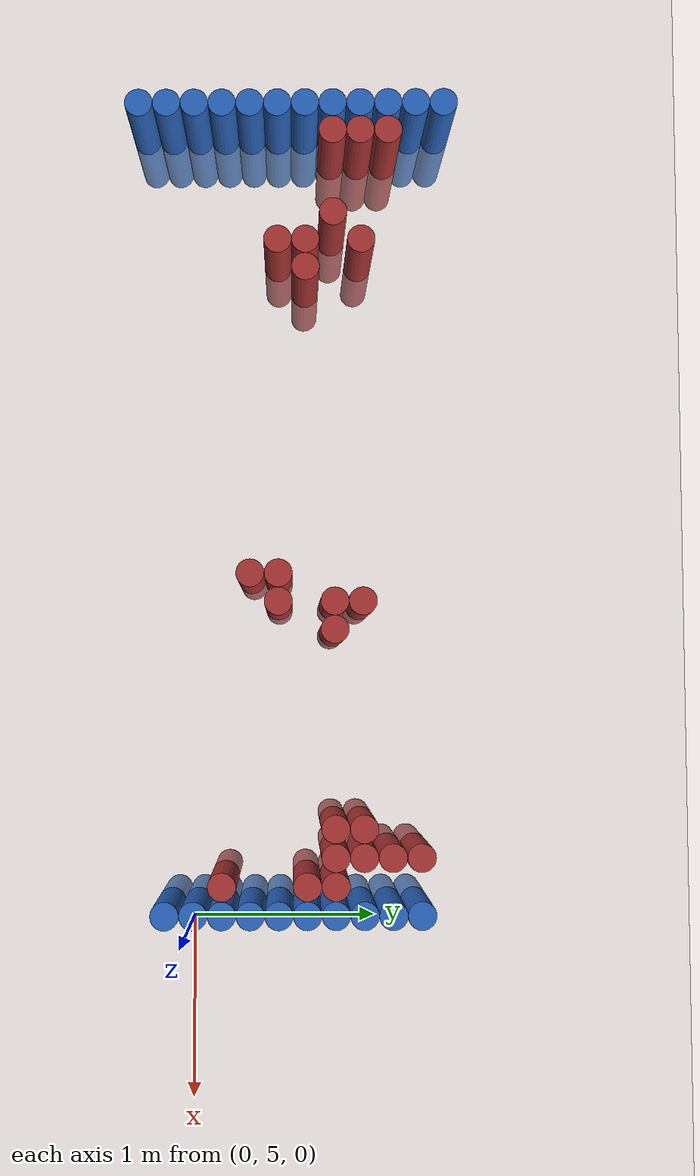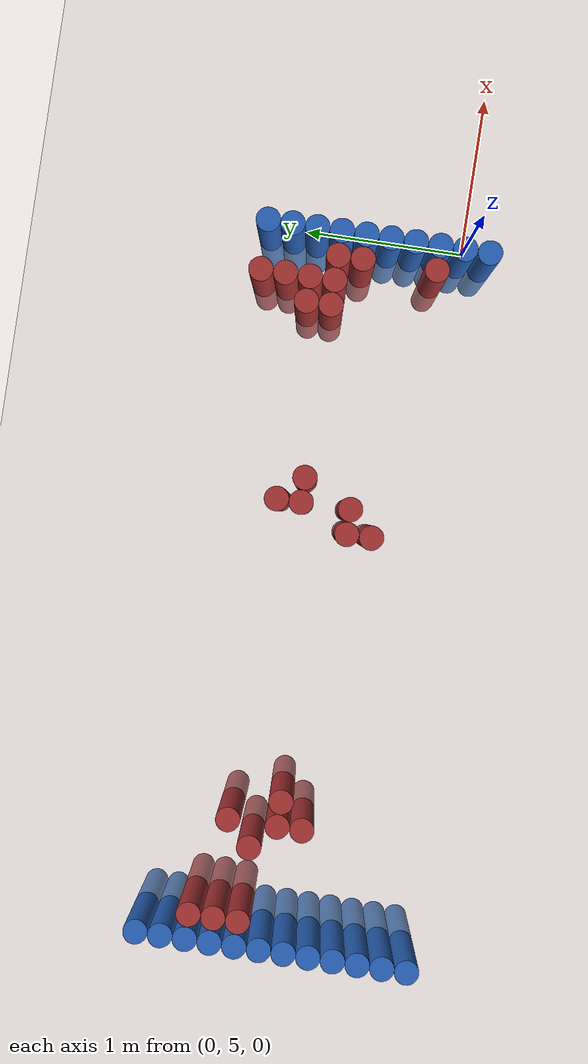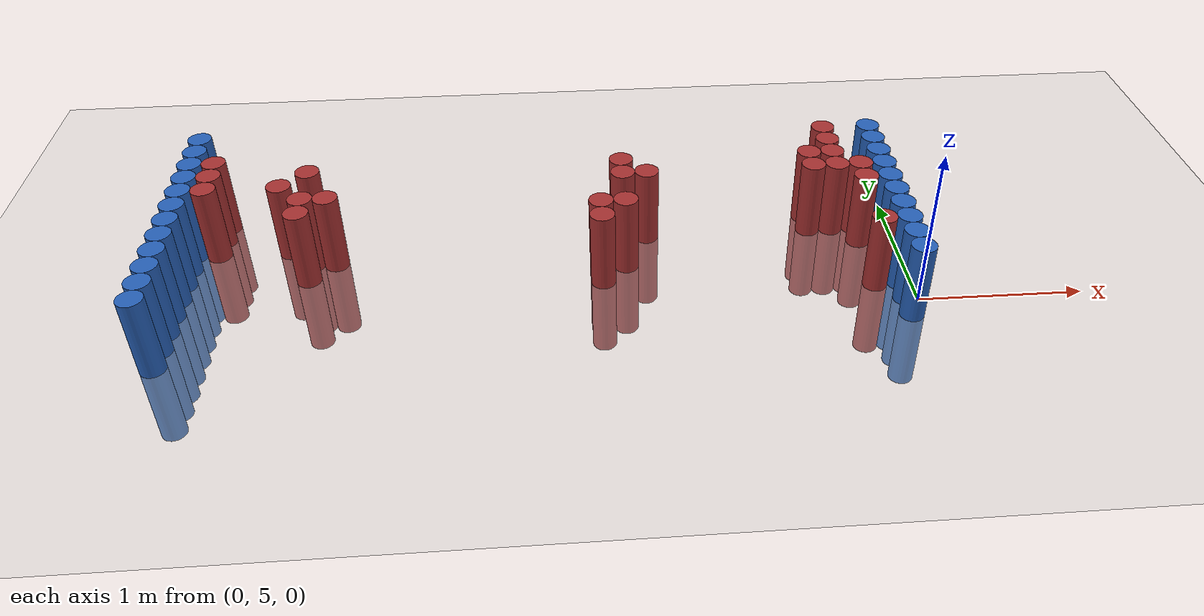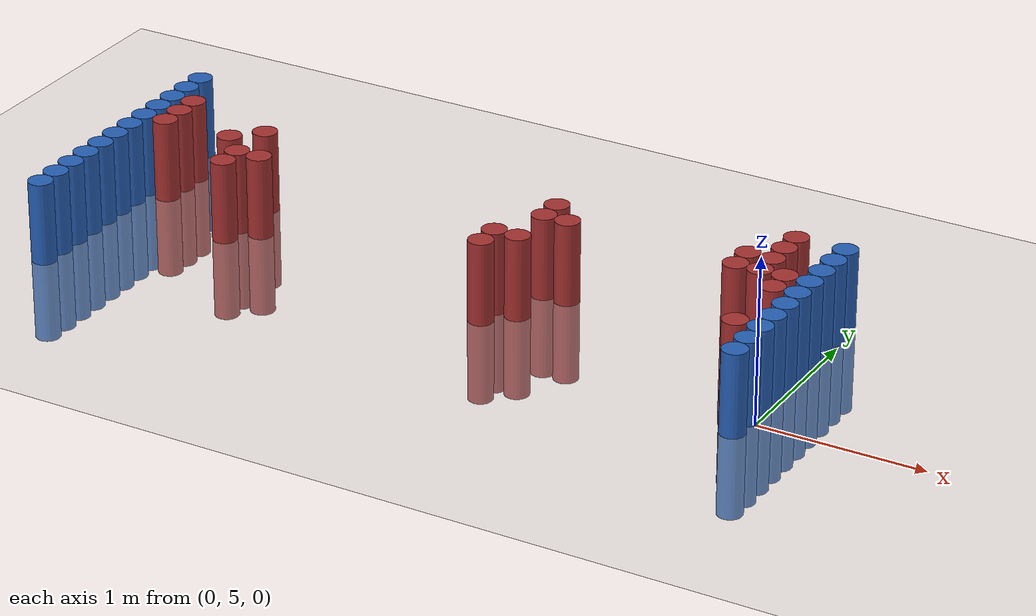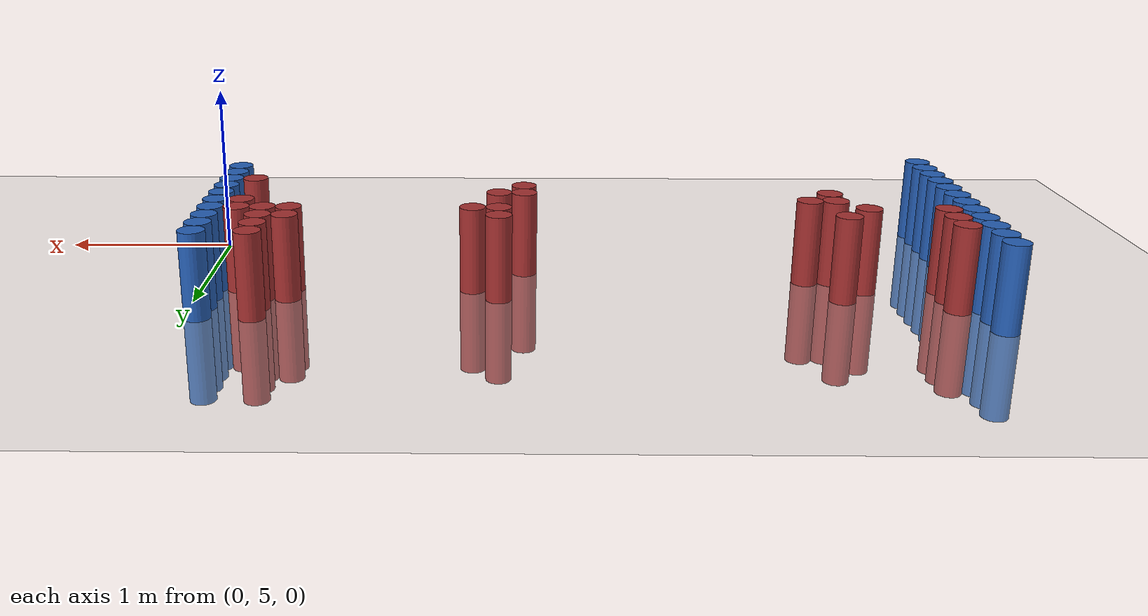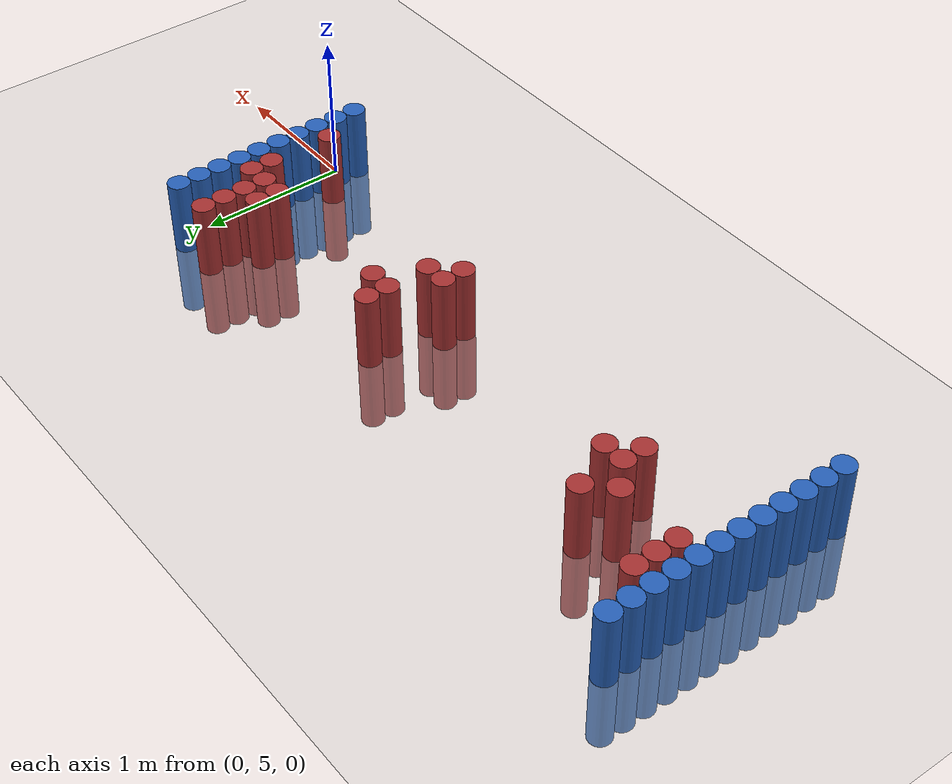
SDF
<sdf version="1.6">
 <world name="default">
  <model name="ground_plane">
   <static>1</static>
   <link name="link">
    <collision name="collision">
     <geometry><plane><normal>0 0 1</normal><size>100 100</size></plane></geometry>
     <surface><friction><ode><mu>100</mu><mu2>50</mu2></ode></friction></surface>
    </collision>
    <visual name="visual">
     <cast_shadows>0</cast_shadows>
     <geometry><plane><normal>0 0 1</normal><size>100 100</size></plane></geometry>
     <material>
      <script><uri>file://media/materials/scripts/gazebo.material</uri><name>Gazebo/Grey</name></script>
     </material>
    </visual>
   </link>
  </model>
  <model name="unit_cylinder_91">
   <static>1</static>
   <pose>-4.425000 4.725000 0.000000 0.000000 0.000000 0.000000</pose>
   <link name="link">
    <inertial>
     <mass>1</mass>
     <inertia><ixx>0.145833</ixx><ixy>0</ixy><ixz>0</ixz><iyy>0.145833</iyy><iyz>0</iyz><izz>0.125</izz></inertia>
    </inertial>
    <collision name="collision">
     <geometry><cylinder><radius>0.075000</radius><length>1</length></cylinder></geometry>
    </collision>
    <visual name="visual">
     <geometry><cylinder><radius>0.075000</radius><length>1</length></cylinder></geometry>
     <material>
      <ambient>0.152000 0.379000 0.720000 1</ambient>
      <diffuse>0.152000 0.379000 0.720000 1</diffuse>
     </material>
     <material>
      <script><name>Gazebo/Grey</name><uri>file://media/materials/scripts/gazebo.material</uri></script>
     </material>
    </visual>
   </link>
  </model>
  <model name="unit_cylinder_92">
   <static>1</static>
   <pose>-0.075000 4.875000 0.000000 0.000000 0.000000 0.000000</pose>
   <link name="link">
    <inertial>
     <mass>1</mass>
     <inertia><ixx>0.145833</ixx><ixy>0</ixy><ixz>0</ixz><iyy>0.145833</iyy><iyz>0</iyz><izz>0.125</izz></inertia>
    </inertial>
    <collision name="collision">
     <geometry><cylinder><radius>0.075000</radius><length>1</length></cylinder></geometry>
    </collision>
    <visual name="visual">
     <geometry><cylinder><radius>0.075000</radius><length>1</length></cylinder></geometry>
     <material>
      <ambient>0.152000 0.379000 0.720000 1</ambient>
      <diffuse>0.152000 0.379000 0.720000 1</diffuse>
     </material>
     <material>
      <script><name>Gazebo/Grey</name><uri>file://media/materials/scripts/gazebo.material</uri></script>
     </material>
    </visual>
   </link>
  </model>
  <model name="unit_cylinder_93">
   <static>1</static>
   <pose>-4.425000 4.875000 0.000000 0.000000 0.000000 0.000000</pose>
   <link name="link">
    <inertial>
     <mass>1</mass>
     <inertia><ixx>0.145833</ixx><ixy>0</ixy><ixz>0</ixz><iyy>0.145833</iyy><iyz>0</iyz><izz>0.125</izz></inertia>
    </inertial>
    <collision name="collision">
     <geometry><cylinder><radius>0.075000</radius><length>1</length></cylinder></geometry>
    </collision>
    <visual name="visual">
     <geometry><cylinder><radius>0.075000</radius><length>1</length></cylinder></geometry>
     <material>
      <ambient>0.152000 0.379000 0.720000 1</ambient>
      <diffuse>0.152000 0.379000 0.720000 1</diffuse>
     </material>
     <material>
      <script><name>Gazebo/Grey</name><uri>file://media/materials/scripts/gazebo.material</uri></script>
     </material>
    </visual>
   </link>
  </model>
  <model name="unit_cylinder_94">
   <static>1</static>
   <pose>-0.075000 5.025000 0.000000 0.000000 0.000000 0.000000</pose>
   <link name="link">
    <inertial>
     <mass>1</mass>
     <inertia><ixx>0.145833</ixx><ixy>0</ixy><ixz>0</ixz><iyy>0.145833</iyy><iyz>0</iyz><izz>0.125</izz></inertia>
    </inertial>
    <collision name="collision">
     <geometry><cylinder><radius>0.075000</radius><length>1</length></cylinder></geometry>
    </collision>
    <visual name="visual">
     <geometry><cylinder><radius>0.075000</radius><length>1</length></cylinder></geometry>
     <material>
      <ambient>0.152000 0.379000 0.720000 1</ambient>
      <diffuse>0.152000 0.379000 0.720000 1</diffuse>
     </material>
     <material>
      <script><name>Gazebo/Grey</name><uri>file://media/materials/scripts/gazebo.material</uri></script>
     </material>
    </visual>
   </link>
  </model>
  <model name="unit_cylinder_95">
   <static>1</static>
   <pose>-4.425000 5.025000 0.000000 0.000000 0.000000 0.000000</pose>
   <link name="link">
    <inertial>
     <mass>1</mass>
     <inertia><ixx>0.145833</ixx><ixy>0</ixy><ixz>0</ixz><iyy>0.145833</iyy><iyz>0</iyz><izz>0.125</izz></inertia>
    </inertial>
    <collision name="collision">
     <geometry><cylinder><radius>0.075000</radius><length>1</length></cylinder></geometry>
    </collision>
    <visual name="visual">
     <geometry><cylinder><radius>0.075000</radius><length>1</length></cylinder></geometry>
     <material>
      <ambient>0.152000 0.379000 0.720000 1</ambient>
      <diffuse>0.152000 0.379000 0.720000 1</diffuse>
     </material>
     <material>
      <script><name>Gazebo/Grey</name><uri>file://media/materials/scripts/gazebo.material</uri></script>
     </material>
    </visual>
   </link>
  </model>
  <model name="unit_cylinder_96">
   <static>1</static>
   <pose>-4.425000 5.175000 0.000000 0.000000 0.000000 0.000000</pose>
   <link name="link">
    <inertial>
     <mass>1</mass>
     <inertia><ixx>0.145833</ixx><ixy>0</ixy><ixz>0</ixz><iyy>0.145833</iyy><iyz>0</iyz><izz>0.125</izz></inertia>
    </inertial>
    <collision name="collision">
     <geometry><cylinder><radius>0.075000</radius><length>1</length></cylinder></geometry>
    </collision>
    <visual name="visual">
     <geometry><cylinder><radius>0.075000</radius><length>1</length></cylinder></geometry>
     <material>
      <ambient>0.152000 0.379000 0.720000 1</ambient>
      <diffuse>0.152000 0.379000 0.720000 1</diffuse>
     </material>
     <material>
      <script><name>Gazebo/Grey</name><uri>file://media/materials/scripts/gazebo.material</uri></script>
     </material>
    </visual>
   </link>
  </model>
  <model name="unit_cylinder_97">
   <static>1</static>
   <pose>-4.425000 5.325000 0.000000 0.000000 0.000000 0.000000</pose>
   <link name="link">
    <inertial>
     <mass>1</mass>
     <inertia><ixx>0.145833</ixx><ixy>0</ixy><ixz>0</ixz><iyy>0.145833</iyy><iyz>0</iyz><izz>0.125</izz></inertia>
    </inertial>
    <collision name="collision">
     <geometry><cylinder><radius>0.075000</radius><length>1</length></cylinder></geometry>
    </collision>
    <visual name="visual">
     <geometry><cylinder><radius>0.075000</radius><length>1</length></cylinder></geometry>
     <material>
      <ambient>0.152000 0.379000 0.720000 1</ambient>
      <diffuse>0.152000 0.379000 0.720000 1</diffuse>
     </material>
     <material>
      <script><name>Gazebo/Grey</name><uri>file://media/materials/scripts/gazebo.material</uri></script>
     </material>
    </visual>
   </link>
  </model>
  <model name="unit_cylinder_98">
   <static>1</static>
   <pose>-4.425000 5.475000 0.000000 0.000000 0.000000 0.000000</pose>
   <link name="link">
    <inertial>
     <mass>1</mass>
     <inertia><ixx>0.145833</ixx><ixy>0</ixy><ixz>0</ixz><iyy>0.145833</iyy><iyz>0</iyz><izz>0.125</izz></inertia>
    </inertial>
    <collision name="collision">
     <geometry><cylinder><radius>0.075000</radius><length>1</length></cylinder></geometry>
    </collision>
    <visual name="visual">
     <geometry><cylinder><radius>0.075000</radius><length>1</length></cylinder></geometry>
     <material>
      <ambient>0.152000 0.379000 0.720000 1</ambient>
      <diffuse>0.152000 0.379000 0.720000 1</diffuse>
     </material>
     <material>
      <script><name>Gazebo/Grey</name><uri>file://media/materials/scripts/gazebo.material</uri></script>
     </material>
    </visual>
   </link>
  </model>
  <model name="unit_cylinder_99">
   <static>1</static>
   <pose>-4.425000 5.625000 0.000000 0.000000 0.000000 0.000000</pose>
   <link name="link">
    <inertial>
     <mass>1</mass>
     <inertia><ixx>0.145833</ixx><ixy>0</ixy><ixz>0</ixz><iyy>0.145833</iyy><iyz>0</iyz><izz>0.125</izz></inertia>
    </inertial>
    <collision name="collision">
     <geometry><cylinder><radius>0.075000</radius><length>1</length></cylinder></geometry>
    </collision>
    <visual name="visual">
     <geometry><cylinder><radius>0.075000</radius><length>1</length></cylinder></geometry>
     <material>
      <ambient>0.152000 0.379000 0.720000 1</ambient>
      <diffuse>0.152000 0.379000 0.720000 1</diffuse>
     </material>
     <material>
      <script><name>Gazebo/Grey</name><uri>file://media/materials/scripts/gazebo.material</uri></script>
     </material>
    </visual>
   </link>
  </model>
  <model name="unit_cylinder_100">
   <static>1</static>
   <pose>-4.425000 5.775000 0.000000 0.000000 0.000000 0.000000</pose>
   <link name="link">
    <inertial>
     <mass>1</mass>
     <inertia><ixx>0.145833</ixx><ixy>0</ixy><ixz>0</ixz><iyy>0.145833</iyy><iyz>0</iyz><izz>0.125</izz></inertia>
    </inertial>
    <collision name="collision">
     <geometry><cylinder><radius>0.075000</radius><length>1</length></cylinder></geometry>
    </collision>
    <visual name="visual">
     <geometry><cylinder><radius>0.075000</radius><length>1</length></cylinder></geometry>
     <material>
      <ambient>0.152000 0.379000 0.720000 1</ambient>
      <diffuse>0.152000 0.379000 0.720000 1</diffuse>
     </material>
     <material>
      <script><name>Gazebo/Grey</name><uri>file://media/materials/scripts/gazebo.material</uri></script>
     </material>
    </visual>
   </link>
  </model>
  <model name="unit_cylinder_101">
   <static>1</static>
   <pose>-4.425000 5.925000 0.000000 0.000000 0.000000 0.000000</pose>
   <link name="link">
    <inertial>
     <mass>1</mass>
     <inertia><ixx>0.145833</ixx><ixy>0</ixy><ixz>0</ixz><iyy>0.145833</iyy><iyz>0</iyz><izz>0.125</izz></inertia>
    </inertial>
    <collision name="collision">
     <geometry><cylinder><radius>0.075000</radius><length>1</length></cylinder></geometry>
    </collision>
    <visual name="visual">
     <geometry><cylinder><radius>0.075000</radius><length>1</length></cylinder></geometry>
     <material>
      <ambient>0.152000 0.379000 0.720000 1</ambient>
      <diffuse>0.152000 0.379000 0.720000 1</diffuse>
     </material>
     <material>
      <script><name>Gazebo/Grey</name><uri>file://media/materials/scripts/gazebo.material</uri></script>
     </material>
    </visual>
   </link>
  </model>
  <model name="unit_cylinder_102">
   <static>1</static>
   <pose>-4.425000 6.075000 0.000000 0.000000 0.000000 0.000000</pose>
   <link name="link">
    <inertial>
     <mass>1</mass>
     <inertia><ixx>0.145833</ixx><ixy>0</ixy><ixz>0</ixz><iyy>0.145833</iyy><iyz>0</iyz><izz>0.125</izz></inertia>
    </inertial>
    <collision name="collision">
     <geometry><cylinder><radius>0.075000</radius><length>1</length></cylinder></geometry>
    </collision>
    <visual name="visual">
     <geometry><cylinder><radius>0.075000</radius><length>1</length></cylinder></geometry>
     <material>
      <ambient>0.152000 0.379000 0.720000 1</ambient>
      <diffuse>0.152000 0.379000 0.720000 1</diffuse>
     </material>
     <material>
      <script><name>Gazebo/Grey</name><uri>file://media/materials/scripts/gazebo.material</uri></script>
     </material>
    </visual>
   </link>
  </model>
  <model name="unit_cylinder_103">
   <static>1</static>
   <pose>-4.425000 6.225000 0.000000 0.000000 0.000000 0.000000</pose>
   <link name="link">
    <inertial>
     <mass>1</mass>
     <inertia><ixx>0.145833</ixx><ixy>0</ixy><ixz>0</ixz><iyy>0.145833</iyy><iyz>0</iyz><izz>0.125</izz></inertia>
    </inertial>
    <collision name="collision">
     <geometry><cylinder><radius>0.075000</radius><length>1</length></cylinder></geometry>
    </collision>
    <visual name="visual">
     <geometry><cylinder><radius>0.075000</radius><length>1</length></cylinder></geometry>
     <material>
      <ambient>0.152000 0.379000 0.720000 1</ambient>
      <diffuse>0.152000 0.379000 0.720000 1</diffuse>
     </material>
     <material>
      <script><name>Gazebo/Grey</name><uri>file://media/materials/scripts/gazebo.material</uri></script>
     </material>
    </visual>
   </link>
  </model>
  <model name="unit_cylinder_104">
   <static>1</static>
   <pose>-4.425000 6.375000 0.000000 0.000000 0.000000 0.000000</pose>
   <link name="link">
    <inertial>
     <mass>1</mass>
     <inertia><ixx>0.145833</ixx><ixy>0</ixy><ixz>0</ixz><iyy>0.145833</iyy><iyz>0</iyz><izz>0.125</izz></inertia>
    </inertial>
    <collision name="collision">
     <geometry><cylinder><radius>0.075000</radius><length>1</length></cylinder></geometry>
    </collision>
    <visual name="visual">
     <geometry><cylinder><radius>0.075000</radius><length>1</length></cylinder></geometry>
     <material>
      <ambient>0.152000 0.379000 0.720000 1</ambient>
      <diffuse>0.152000 0.379000 0.720000 1</diffuse>
     </material>
     <material>
      <script><name>Gazebo/Grey</name><uri>file://media/materials/scripts/gazebo.material</uri></script>
     </material>
    </visual>
   </link>
  </model>
  <model name="unit_cylinder_126">
   <static>1</static>
   <pose>-4.275000 5.775000 0.000000 0.000000 0.000000 0.000000</pose>
   <link name="link">
    <inertial>
     <mass>1</mass>
     <inertia><ixx>0.145833</ixx><ixy>0</ixy><ixz>0</ixz><iyy>0.145833</iyy><iyz>0</iyz><izz>0.125</izz></inertia>
    </inertial>
    <collision name="collision">
     <geometry><cylinder><radius>0.075000</radius><length>1</length></cylinder></geometry>
    </collision>
    <visual name="visual">
     <geometry><cylinder><radius>0.075000</radius><length>1</length></cylinder></geometry>
     <material>
      <ambient>0.648000 0.192000 0.192000 1</ambient>
      <diffuse>0.648000 0.192000 0.192000 1</diffuse>
     </material>
     <material>
      <script><name>Gazebo/Grey</name><uri>file://media/materials/scripts/gazebo.material</uri></script>
     </material>
    </visual>
   </link>
  </model>
  <model name="unit_cylinder_127">
   <static>1</static>
   <pose>-4.275000 5.925000 0.000000 0.000000 0.000000 0.000000</pose>
   <link name="link">
    <inertial>
     <mass>1</mass>
     <inertia><ixx>0.145833</ixx><ixy>0</ixy><ixz>0</ixz><iyy>0.145833</iyy><iyz>0</iyz><izz>0.125</izz></inertia>
    </inertial>
    <collision name="collision">
     <geometry><cylinder><radius>0.075000</radius><length>1</length></cylinder></geometry>
    </collision>
    <visual name="visual">
     <geometry><cylinder><radius>0.075000</radius><length>1</length></cylinder></geometry>
     <material>
      <ambient>0.648000 0.192000 0.192000 1</ambient>
      <diffuse>0.648000 0.192000 0.192000 1</diffuse>
     </material>
     <material>
      <script><name>Gazebo/Grey</name><uri>file://media/materials/scripts/gazebo.material</uri></script>
     </material>
    </visual>
   </link>
  </model>
  <model name="unit_cylinder_128">
   <static>1</static>
   <pose>-4.275000 6.075000 0.000000 0.000000 0.000000 0.000000</pose>
   <link name="link">
    <inertial>
     <mass>1</mass>
     <inertia><ixx>0.145833</ixx><ixy>0</ixy><ixz>0</ixz><iyy>0.145833</iyy><iyz>0</iyz><izz>0.125</izz></inertia>
    </inertial>
    <collision name="collision">
     <geometry><cylinder><radius>0.075000</radius><length>1</length></cylinder></geometry>
    </collision>
    <visual name="visual">
     <geometry><cylinder><radius>0.075000</radius><length>1</length></cylinder></geometry>
     <material>
      <ambient>0.648000 0.192000 0.192000 1</ambient>
      <diffuse>0.648000 0.192000 0.192000 1</diffuse>
     </material>
     <material>
      <script><name>Gazebo/Grey</name><uri>file://media/materials/scripts/gazebo.material</uri></script>
     </material>
    </visual>
   </link>
  </model>
  <model name="unit_cylinder_150">
   <static>1</static>
   <pose>-3.825000 5.775000 0.000000 0.000000 0.000000 0.000000</pose>
   <link name="link">
    <inertial>
     <mass>1</mass>
     <inertia><ixx>0.145833</ixx><ixy>0</ixy><ixz>0</ixz><iyy>0.145833</iyy><iyz>0</iyz><izz>0.125</izz></inertia>
    </inertial>
    <collision name="collision">
     <geometry><cylinder><radius>0.075000</radius><length>1</length></cylinder></geometry>
    </collision>
    <visual name="visual">
     <geometry><cylinder><radius>0.075000</radius><length>1</length></cylinder></geometry>
     <material>
      <ambient>0.648000 0.192000 0.192000 1</ambient>
      <diffuse>0.648000 0.192000 0.192000 1</diffuse>
     </material>
     <material>
      <script><name>Gazebo/Grey</name><uri>file://media/materials/scripts/gazebo.material</uri></script>
     </material>
    </visual>
   </link>
  </model>
  <model name="unit_cylinder_156">
   <static>1</static>
   <pose>-3.675000 5.475000 0.000000 0.000000 0.000000 0.000000</pose>
   <link name="link">
    <inertial>
     <mass>1</mass>
     <inertia><ixx>0.145833</ixx><ixy>0</ixy><ixz>0</ixz><iyy>0.145833</iyy><iyz>0</iyz><izz>0.125</izz></inertia>
    </inertial>
    <collision name="collision">
     <geometry><cylinder><radius>0.075000</radius><length>1</length></cylinder></geometry>
    </collision>
    <visual name="visual">
     <geometry><cylinder><radius>0.075000</radius><length>1</length></cylinder></geometry>
     <material>
      <ambient>0.648000 0.192000 0.192000 1</ambient>
      <diffuse>0.648000 0.192000 0.192000 1</diffuse>
     </material>
     <material>
      <script><name>Gazebo/Grey</name><uri>file://media/materials/scripts/gazebo.material</uri></script>
     </material>
    </visual>
   </link>
  </model>
  <model name="unit_cylinder_157">
   <static>1</static>
   <pose>-3.675000 5.625000 0.000000 0.000000 0.000000 0.000000</pose>
   <link name="link">
    <inertial>
     <mass>1</mass>
     <inertia><ixx>0.145833</ixx><ixy>0</ixy><ixz>0</ixz><iyy>0.145833</iyy><iyz>0</iyz><izz>0.125</izz></inertia>
    </inertial>
    <collision name="collision">
     <geometry><cylinder><radius>0.075000</radius><length>1</length></cylinder></geometry>
    </collision>
    <visual name="visual">
     <geometry><cylinder><radius>0.075000</radius><length>1</length></cylinder></geometry>
     <material>
      <ambient>0.648000 0.192000 0.192000 1</ambient>
      <diffuse>0.648000 0.192000 0.192000 1</diffuse>
     </material>
     <material>
      <script><name>Gazebo/Grey</name><uri>file://media/materials/scripts/gazebo.material</uri></script>
     </material>
    </visual>
   </link>
  </model>
  <model name="unit_cylinder_158">
   <static>1</static>
   <pose>-3.675000 5.925000 0.000000 0.000000 0.000000 0.000000</pose>
   <link name="link">
    <inertial>
     <mass>1</mass>
     <inertia><ixx>0.145833</ixx><ixy>0</ixy><ixz>0</ixz><iyy>0.145833</iyy><iyz>0</iyz><izz>0.125</izz></inertia>
    </inertial>
    <collision name="collision">
     <geometry><cylinder><radius>0.075000</radius><length>1</length></cylinder></geometry>
    </collision>
    <visual name="visual">
     <geometry><cylinder><radius>0.075000</radius><length>1</length></cylinder></geometry>
     <material>
      <ambient>0.648000 0.192000 0.192000 1</ambient>
      <diffuse>0.648000 0.192000 0.192000 1</diffuse>
     </material>
     <material>
      <script><name>Gazebo/Grey</name><uri>file://media/materials/scripts/gazebo.material</uri></script>
     </material>
    </visual>
   </link>
  </model>
  <model name="unit_cylinder_159">
   <static>1</static>
   <pose>-3.525000 5.625000 0.000000 0.000000 0.000000 0.000000</pose>
   <link name="link">
    <inertial>
     <mass>1</mass>
     <inertia><ixx>0.145833</ixx><ixy>0</ixy><ixz>0</ixz><iyy>0.145833</iyy><iyz>0</iyz><izz>0.125</izz></inertia>
    </inertial>
    <collision name="collision">
     <geometry><cylinder><radius>0.075000</radius><length>1</length></cylinder></geometry>
    </collision>
    <visual name="visual">
     <geometry><cylinder><radius>0.075000</radius><length>1</length></cylinder></geometry>
     <material>
      <ambient>0.648000 0.192000 0.192000 1</ambient>
      <diffuse>0.648000 0.192000 0.192000 1</diffuse>
     </material>
     <material>
      <script><name>Gazebo/Grey</name><uri>file://media/materials/scripts/gazebo.material</uri></script>
     </material>
    </visual>
   </link>
  </model>
  <model name="unit_cylinder_187">
   <static>1</static>
   <pose>-1.875000 5.325000 0.000000 0.000000 0.000000 0.000000</pose>
   <link name="link">
    <inertial>
     <mass>1</mass>
     <inertia><ixx>0.145833</ixx><ixy>0</ixy><ixz>0</ixz><iyy>0.145833</iyy><iyz>0</iyz><izz>0.125</izz></inertia>
    </inertial>
    <collision name="collision">
     <geometry><cylinder><radius>0.075000</radius><length>1</length></cylinder></geometry>
    </collision>
    <visual name="visual">
     <geometry><cylinder><radius>0.075000</radius><length>1</length></cylinder></geometry>
     <material>
      <ambient>0.648000 0.192000 0.192000 1</ambient>
      <diffuse>0.648000 0.192000 0.192000 1</diffuse>
     </material>
     <material>
      <script><name>Gazebo/Grey</name><uri>file://media/materials/scripts/gazebo.material</uri></script>
     </material>
    </visual>
   </link>
  </model>
  <model name="unit_cylinder_188">
   <static>1</static>
   <pose>-1.875000 5.475000 0.000000 0.000000 0.000000 0.000000</pose>
   <link name="link">
    <inertial>
     <mass>1</mass>
     <inertia><ixx>0.145833</ixx><ixy>0</ixy><ixz>0</ixz><iyy>0.145833</iyy><iyz>0</iyz><izz>0.125</izz></inertia>
    </inertial>
    <collision name="collision">
     <geometry><cylinder><radius>0.075000</radius><length>1</length></cylinder></geometry>
    </collision>
    <visual name="visual">
     <geometry><cylinder><radius>0.075000</radius><length>1</length></cylinder></geometry>
     <material>
      <ambient>0.648000 0.192000 0.192000 1</ambient>
      <diffuse>0.648000 0.192000 0.192000 1</diffuse>
     </material>
     <material>
      <script><name>Gazebo/Grey</name><uri>file://media/materials/scripts/gazebo.material</uri></script>
     </material>
    </visual>
   </link>
  </model>
  <model name="unit_cylinder_191">
   <static>1</static>
   <pose>-1.725000 5.475000 0.000000 0.000000 0.000000 0.000000</pose>
   <link name="link">
    <inertial>
     <mass>1</mass>
     <inertia><ixx>0.145833</ixx><ixy>0</ixy><ixz>0</ixz><iyy>0.145833</iyy><iyz>0</iyz><izz>0.125</izz></inertia>
    </inertial>
    <collision name="collision">
     <geometry><cylinder><radius>0.075000</radius><length>1</length></cylinder></geometry>
    </collision>
    <visual name="visual">
     <geometry><cylinder><radius>0.075000</radius><length>1</length></cylinder></geometry>
     <material>
      <ambient>0.648000 0.192000 0.192000 1</ambient>
      <diffuse>0.648000 0.192000 0.192000 1</diffuse>
     </material>
     <material>
      <script><name>Gazebo/Grey</name><uri>file://media/materials/scripts/gazebo.material</uri></script>
     </material>
    </visual>
   </link>
  </model>
  <model name="unit_cylinder_192">
   <static>1</static>
   <pose>-1.725000 5.775000 0.000000 0.000000 0.000000 0.000000</pose>
   <link name="link">
    <inertial>
     <mass>1</mass>
     <inertia><ixx>0.145833</ixx><ixy>0</ixy><ixz>0</ixz><iyy>0.145833</iyy><iyz>0</iyz><izz>0.125</izz></inertia>
    </inertial>
    <collision name="collision">
     <geometry><cylinder><radius>0.075000</radius><length>1</length></cylinder></geometry>
    </collision>
    <visual name="visual">
     <geometry><cylinder><radius>0.075000</radius><length>1</length></cylinder></geometry>
     <material>
      <ambient>0.648000 0.192000 0.192000 1</ambient>
      <diffuse>0.648000 0.192000 0.192000 1</diffuse>
     </material>
     <material>
      <script><name>Gazebo/Grey</name><uri>file://media/materials/scripts/gazebo.material</uri></script>
     </material>
    </visual>
   </link>
  </model>
  <model name="unit_cylinder_193">
   <static>1</static>
   <pose>-1.725000 5.925000 0.000000 0.000000 0.000000 0.000000</pose>
   <link name="link">
    <inertial>
     <mass>1</mass>
     <inertia><ixx>0.145833</ixx><ixy>0</ixy><ixz>0</ixz><iyy>0.145833</iyy><iyz>0</iyz><izz>0.125</izz></inertia>
    </inertial>
    <collision name="collision">
     <geometry><cylinder><radius>0.075000</radius><length>1</length></cylinder></geometry>
    </collision>
    <visual name="visual">
     <geometry><cylinder><radius>0.075000</radius><length>1</length></cylinder></geometry>
     <material>
      <ambient>0.648000 0.192000 0.192000 1</ambient>
      <diffuse>0.648000 0.192000 0.192000 1</diffuse>
     </material>
     <material>
      <script><name>Gazebo/Grey</name><uri>file://media/materials/scripts/gazebo.material</uri></script>
     </material>
    </visual>
   </link>
  </model>
  <model name="unit_cylinder_194">
   <static>1</static>
   <pose>-1.575000 5.775000 0.000000 0.000000 0.000000 0.000000</pose>
   <link name="link">
    <inertial>
     <mass>1</mass>
     <inertia><ixx>0.145833</ixx><ixy>0</ixy><ixz>0</ixz><iyy>0.145833</iyy><iyz>0</iyz><izz>0.125</izz></inertia>
    </inertial>
    <collision name="collision">
     <geometry><cylinder><radius>0.075000</radius><length>1</length></cylinder></geometry>
    </collision>
    <visual name="visual">
     <geometry><cylinder><radius>0.075000</radius><length>1</length></cylinder></geometry>
     <material>
      <ambient>0.648000 0.192000 0.192000 1</ambient>
      <diffuse>0.648000 0.192000 0.192000 1</diffuse>
     </material>
     <material>
      <script><name>Gazebo/Grey</name><uri>file://media/materials/scripts/gazebo.material</uri></script>
     </material>
    </visual>
   </link>
  </model>
  <model name="unit_cylinder_207">
   <static>1</static>
   <pose>-0.525000 5.775000 0.000000 0.000000 0.000000 0.000000</pose>
   <link name="link">
    <inertial>
     <mass>1</mass>
     <inertia><ixx>0.145833</ixx><ixy>0</ixy><ixz>0</ixz><iyy>0.145833</iyy><iyz>0</iyz><izz>0.125</izz></inertia>
    </inertial>
    <collision name="collision">
     <geometry><cylinder><radius>0.075000</radius><length>1</length></cylinder></geometry>
    </collision>
    <visual name="visual">
     <geometry><cylinder><radius>0.075000</radius><length>1</length></cylinder></geometry>
     <material>
      <ambient>0.648000 0.192000 0.192000 1</ambient>
      <diffuse>0.648000 0.192000 0.192000 1</diffuse>
     </material>
     <material>
      <script><name>Gazebo/Grey</name><uri>file://media/materials/scripts/gazebo.material</uri></script>
     </material>
    </visual>
   </link>
  </model>
  <model name="unit_cylinder_208">
   <static>1</static>
   <pose>-0.525000 5.925000 0.000000 0.000000 0.000000 0.000000</pose>
   <link name="link">
    <inertial>
     <mass>1</mass>
     <inertia><ixx>0.145833</ixx><ixy>0</ixy><ixz>0</ixz><iyy>0.145833</iyy><iyz>0</iyz><izz>0.125</izz></inertia>
    </inertial>
    <collision name="collision">
     <geometry><cylinder><radius>0.075000</radius><length>1</length></cylinder></geometry>
    </collision>
    <visual name="visual">
     <geometry><cylinder><radius>0.075000</radius><length>1</length></cylinder></geometry>
     <material>
      <ambient>0.648000 0.192000 0.192000 1</ambient>
      <diffuse>0.648000 0.192000 0.192000 1</diffuse>
     </material>
     <material>
      <script><name>Gazebo/Grey</name><uri>file://media/materials/scripts/gazebo.material</uri></script>
     </material>
    </visual>
   </link>
  </model>
  <model name="unit_cylinder_214">
   <static>1</static>
   <pose>-0.375000 5.775000 0.000000 0.000000 0.000000 0.000000</pose>
   <link name="link">
    <inertial>
     <mass>1</mass>
     <inertia><ixx>0.145833</ixx><ixy>0</ixy><ixz>0</ixz><iyy>0.145833</iyy><iyz>0</iyz><izz>0.125</izz></inertia>
    </inertial>
    <collision name="collision">
     <geometry><cylinder><radius>0.075000</radius><length>1</length></cylinder></geometry>
    </collision>
    <visual name="visual">
     <geometry><cylinder><radius>0.075000</radius><length>1</length></cylinder></geometry>
     <material>
      <ambient>0.648000 0.192000 0.192000 1</ambient>
      <diffuse>0.648000 0.192000 0.192000 1</diffuse>
     </material>
     <material>
      <script><name>Gazebo/Grey</name><uri>file://media/materials/scripts/gazebo.material</uri></script>
     </material>
    </visual>
   </link>
  </model>
  <model name="unit_cylinder_215">
   <static>1</static>
   <pose>-0.375000 5.925000 0.000000 0.000000 0.000000 0.000000</pose>
   <link name="link">
    <inertial>
     <mass>1</mass>
     <inertia><ixx>0.145833</ixx><ixy>0</ixy><ixz>0</ixz><iyy>0.145833</iyy><iyz>0</iyz><izz>0.125</izz></inertia>
    </inertial>
    <collision name="collision">
     <geometry><cylinder><radius>0.075000</radius><length>1</length></cylinder></geometry>
    </collision>
    <visual name="visual">
     <geometry><cylinder><radius>0.075000</radius><length>1</length></cylinder></geometry>
     <material>
      <ambient>0.648000 0.192000 0.192000 1</ambient>
      <diffuse>0.648000 0.192000 0.192000 1</diffuse>
     </material>
     <material>
      <script><name>Gazebo/Grey</name><uri>file://media/materials/scripts/gazebo.material</uri></script>
     </material>
    </visual>
   </link>
  </model>
  <model name="unit_cylinder_216">
   <static>1</static>
   <pose>-0.375000 6.075000 0.000000 0.000000 0.000000 0.000000</pose>
   <link name="link">
    <inertial>
     <mass>1</mass>
     <inertia><ixx>0.145833</ixx><ixy>0</ixy><ixz>0</ixz><iyy>0.145833</iyy><iyz>0</iyz><izz>0.125</izz></inertia>
    </inertial>
    <collision name="collision">
     <geometry><cylinder><radius>0.075000</radius><length>1</length></cylinder></geometry>
    </collision>
    <visual name="visual">
     <geometry><cylinder><radius>0.075000</radius><length>1</length></cylinder></geometry>
     <material>
      <ambient>0.648000 0.192000 0.192000 1</ambient>
      <diffuse>0.648000 0.192000 0.192000 1</diffuse>
     </material>
     <material>
      <script><name>Gazebo/Grey</name><uri>file://media/materials/scripts/gazebo.material</uri></script>
     </material>
    </visual>
   </link>
  </model>
  <model name="unit_cylinder_217">
   <static>1</static>
   <pose>-0.375000 6.225000 0.000000 0.000000 0.000000 0.000000</pose>
   <link name="link">
    <inertial>
     <mass>1</mass>
     <inertia><ixx>0.145833</ixx><ixy>0</ixy><ixz>0</ixz><iyy>0.145833</iyy><iyz>0</iyz><izz>0.125</izz></inertia>
    </inertial>
    <collision name="collision">
     <geometry><cylinder><radius>0.075000</radius><length>1</length></cylinder></geometry>
    </collision>
    <visual name="visual">
     <geometry><cylinder><radius>0.075000</radius><length>1</length></cylinder></geometry>
     <material>
      <ambient>0.648000 0.192000 0.192000 1</ambient>
      <diffuse>0.648000 0.192000 0.192000 1</diffuse>
     </material>
     <material>
      <script><name>Gazebo/Grey</name><uri>file://media/materials/scripts/gazebo.material</uri></script>
     </material>
    </visual>
   </link>
  </model>
  <model name="unit_cylinder_228">
   <static>1</static>
   <pose>-0.225000 5.175000 0.000000 0.000000 0.000000 0.000000</pose>
   <link name="link">
    <inertial>
     <mass>1</mass>
     <inertia><ixx>0.145833</ixx><ixy>0</ixy><ixz>0</ixz><iyy>0.145833</iyy><iyz>0</iyz><izz>0.125</izz></inertia>
    </inertial>
    <collision name="collision">
     <geometry><cylinder><radius>0.075000</radius><length>1</length></cylinder></geometry>
    </collision>
    <visual name="visual">
     <geometry><cylinder><radius>0.075000</radius><length>1</length></cylinder></geometry>
     <material>
      <ambient>0.648000 0.192000 0.192000 1</ambient>
      <diffuse>0.648000 0.192000 0.192000 1</diffuse>
     </material>
     <material>
      <script><name>Gazebo/Grey</name><uri>file://media/materials/scripts/gazebo.material</uri></script>
     </material>
    </visual>
   </link>
  </model>
  <model name="unit_cylinder_229">
   <static>1</static>
   <pose>-0.225000 5.625000 0.000000 0.000000 0.000000 0.000000</pose>
   <link name="link">
    <inertial>
     <mass>1</mass>
     <inertia><ixx>0.145833</ixx><ixy>0</ixy><ixz>0</ixz><iyy>0.145833</iyy><iyz>0</iyz><izz>0.125</izz></inertia>
    </inertial>
    <collision name="collision">
     <geometry><cylinder><radius>0.075000</radius><length>1</length></cylinder></geometry>
    </collision>
    <visual name="visual">
     <geometry><cylinder><radius>0.075000</radius><length>1</length></cylinder></geometry>
     <material>
      <ambient>0.648000 0.192000 0.192000 1</ambient>
      <diffuse>0.648000 0.192000 0.192000 1</diffuse>
     </material>
     <material>
      <script><name>Gazebo/Grey</name><uri>file://media/materials/scripts/gazebo.material</uri></script>
     </material>
    </visual>
   </link>
  </model>
  <model name="unit_cylinder_230">
   <static>1</static>
   <pose>-0.225000 5.775000 0.000000 0.000000 0.000000 0.000000</pose>
   <link name="link">
    <inertial>
     <mass>1</mass>
     <inertia><ixx>0.145833</ixx><ixy>0</ixy><ixz>0</ixz><iyy>0.145833</iyy><iyz>0</iyz><izz>0.125</izz></inertia>
    </inertial>
    <collision name="collision">
     <geometry><cylinder><radius>0.075000</radius><length>1</length></cylinder></geometry>
    </collision>
    <visual name="visual">
     <geometry><cylinder><radius>0.075000</radius><length>1</length></cylinder></geometry>
     <material>
      <ambient>0.648000 0.192000 0.192000 1</ambient>
      <diffuse>0.648000 0.192000 0.192000 1</diffuse>
     </material>
     <material>
      <script><name>Gazebo/Grey</name><uri>file://media/materials/scripts/gazebo.material</uri></script>
     </material>
    </visual>
   </link>
  </model>
  <model name="unit_cylinder_243">
   <static>1</static>
   <pose>-0.075000 5.175000 0.000000 0.000000 0.000000 0.000000</pose>
   <link name="link">
    <inertial>
     <mass>1</mass>
     <inertia><ixx>0.145833</ixx><ixy>0</ixy><ixz>0</ixz><iyy>0.145833</iyy><iyz>0</iyz><izz>0.125</izz></inertia>
    </inertial>
    <collision name="collision">
     <geometry><cylinder><radius>0.075000</radius><length>1</length></cylinder></geometry>
    </collision>
    <visual name="visual">
     <geometry><cylinder><radius>0.075000</radius><length>1</length></cylinder></geometry>
     <material>
      <ambient>0.152000 0.379000 0.720000 1</ambient>
      <diffuse>0.152000 0.379000 0.720000 1</diffuse>
     </material>
     <material>
      <script><name>Gazebo/Grey</name><uri>file://media/materials/scripts/gazebo.material</uri></script>
     </material>
    </visual>
   </link>
  </model>
  <model name="unit_cylinder_244">
   <static>1</static>
   <pose>-0.075000 5.325000 0.000000 0.000000 0.000000 0.000000</pose>
   <link name="link">
    <inertial>
     <mass>1</mass>
     <inertia><ixx>0.145833</ixx><ixy>0</ixy><ixz>0</ixz><iyy>0.145833</iyy><iyz>0</iyz><izz>0.125</izz></inertia>
    </inertial>
    <collision name="collision">
     <geometry><cylinder><radius>0.075000</radius><length>1</length></cylinder></geometry>
    </collision>
    <visual name="visual">
     <geometry><cylinder><radius>0.075000</radius><length>1</length></cylinder></geometry>
     <material>
      <ambient>0.152000 0.379000 0.720000 1</ambient>
      <diffuse>0.152000 0.379000 0.720000 1</diffuse>
     </material>
     <material>
      <script><name>Gazebo/Grey</name><uri>file://media/materials/scripts/gazebo.material</uri></script>
     </material>
    </visual>
   </link>
  </model>
  <model name="unit_cylinder_245">
   <static>1</static>
   <pose>-0.075000 5.475000 0.000000 0.000000 0.000000 0.000000</pose>
   <link name="link">
    <inertial>
     <mass>1</mass>
     <inertia><ixx>0.145833</ixx><ixy>0</ixy><ixz>0</ixz><iyy>0.145833</iyy><iyz>0</iyz><izz>0.125</izz></inertia>
    </inertial>
    <collision name="collision">
     <geometry><cylinder><radius>0.075000</radius><length>1</length></cylinder></geometry>
    </collision>
    <visual name="visual">
     <geometry><cylinder><radius>0.075000</radius><length>1</length></cylinder></geometry>
     <material>
      <ambient>0.152000 0.379000 0.720000 1</ambient>
      <diffuse>0.152000 0.379000 0.720000 1</diffuse>
     </material>
     <material>
      <script><name>Gazebo/Grey</name><uri>file://media/materials/scripts/gazebo.material</uri></script>
     </material>
    </visual>
   </link>
  </model>
  <model name="unit_cylinder_246">
   <static>1</static>
   <pose>-0.075000 5.625000 0.000000 0.000000 0.000000 0.000000</pose>
   <link name="link">
    <inertial>
     <mass>1</mass>
     <inertia><ixx>0.145833</ixx><ixy>0</ixy><ixz>0</ixz><iyy>0.145833</iyy><iyz>0</iyz><izz>0.125</izz></inertia>
    </inertial>
    <collision name="collision">
     <geometry><cylinder><radius>0.075000</radius><length>1</length></cylinder></geometry>
    </collision>
    <visual name="visual">
     <geometry><cylinder><radius>0.075000</radius><length>1</length></cylinder></geometry>
     <material>
      <ambient>0.152000 0.379000 0.720000 1</ambient>
      <diffuse>0.152000 0.379000 0.720000 1</diffuse>
     </material>
     <material>
      <script><name>Gazebo/Grey</name><uri>file://media/materials/scripts/gazebo.material</uri></script>
     </material>
    </visual>
   </link>
  </model>
  <model name="unit_cylinder_247">
   <static>1</static>
   <pose>-0.075000 5.775000 0.000000 0.000000 0.000000 0.000000</pose>
   <link name="link">
    <inertial>
     <mass>1</mass>
     <inertia><ixx>0.145833</ixx><ixy>0</ixy><ixz>0</ixz><iyy>0.145833</iyy><iyz>0</iyz><izz>0.125</izz></inertia>
    </inertial>
    <collision name="collision">
     <geometry><cylinder><radius>0.075000</radius><length>1</length></cylinder></geometry>
    </collision>
    <visual name="visual">
     <geometry><cylinder><radius>0.075000</radius><length>1</length></cylinder></geometry>
     <material>
      <ambient>0.152000 0.379000 0.720000 1</ambient>
      <diffuse>0.152000 0.379000 0.720000 1</diffuse>
     </material>
     <material>
      <script><name>Gazebo/Grey</name><uri>file://media/materials/scripts/gazebo.material</uri></script>
     </material>
    </visual>
   </link>
  </model>
  <model name="unit_cylinder_248">
   <static>1</static>
   <pose>-0.075000 5.925000 0.000000 0.000000 0.000000 0.000000</pose>
   <link name="link">
    <inertial>
     <mass>1</mass>
     <inertia><ixx>0.145833</ixx><ixy>0</ixy><ixz>0</ixz><iyy>0.145833</iyy><iyz>0</iyz><izz>0.125</izz></inertia>
    </inertial>
    <collision name="collision">
     <geometry><cylinder><radius>0.075000</radius><length>1</length></cylinder></geometry>
    </collision>
    <visual name="visual">
     <geometry><cylinder><radius>0.075000</radius><length>1</length></cylinder></geometry>
     <material>
      <ambient>0.152000 0.379000 0.720000 1</ambient>
      <diffuse>0.152000 0.379000 0.720000 1</diffuse>
     </material>
     <material>
      <script><name>Gazebo/Grey</name><uri>file://media/materials/scripts/gazebo.material</uri></script>
     </material>
    </visual>
   </link>
  </model>
  <model name="unit_cylinder_249">
   <static>1</static>
   <pose>-0.075000 6.075000 0.000000 0.000000 0.000000 0.000000</pose>
   <link name="link">
    <inertial>
     <mass>1</mass>
     <inertia><ixx>0.145833</ixx><ixy>0</ixy><ixz>0</ixz><iyy>0.145833</iyy><iyz>0</iyz><izz>0.125</izz></inertia>
    </inertial>
    <collision name="collision">
     <geometry><cylinder><radius>0.075000</radius><length>1</length></cylinder></geometry>
    </collision>
    <visual name="visual">
     <geometry><cylinder><radius>0.075000</radius><length>1</length></cylinder></geometry>
     <material>
      <ambient>0.152000 0.379000 0.720000 1</ambient>
      <diffuse>0.152000 0.379000 0.720000 1</diffuse>
     </material>
     <material>
      <script><name>Gazebo/Grey</name><uri>file://media/materials/scripts/gazebo.material</uri></script>
     </material>
    </visual>
   </link>
  </model>
  <model name="unit_cylinder_250">
   <static>1</static>
   <pose>-0.075000 6.225000 0.000000 0.000000 0.000000 0.000000</pose>
   <link name="link">
    <inertial>
     <mass>1</mass>
     <inertia><ixx>0.145833</ixx><ixy>0</ixy><ixz>0</ixz><iyy>0.145833</iyy><iyz>0</iyz><izz>0.125</izz></inertia>
    </inertial>
    <collision name="collision">
     <geometry><cylinder><radius>0.075000</radius><length>1</length></cylinder></geometry>
    </collision>
    <visual name="visual">
     <geometry><cylinder><radius>0.075000</radius><length>1</length></cylinder></geometry>
     <material>
      <ambient>0.152000 0.379000 0.720000 1</ambient>
      <diffuse>0.152000 0.379000 0.720000 1</diffuse>
     </material>
     <material>
      <script><name>Gazebo/Grey</name><uri>file://media/materials/scripts/gazebo.material</uri></script>
     </material>
    </visual>
   </link>
  </model>
 </world>
</sdf>
